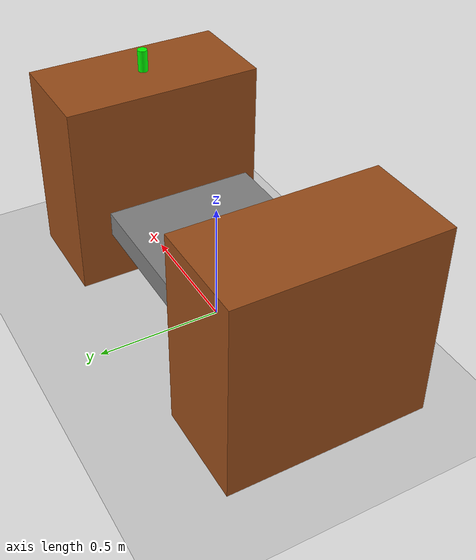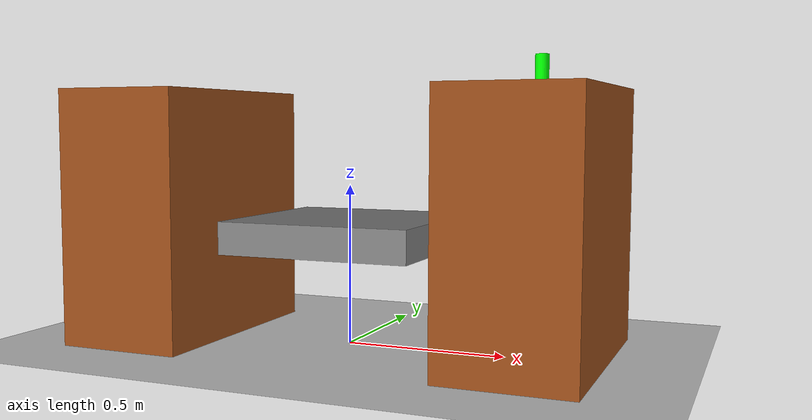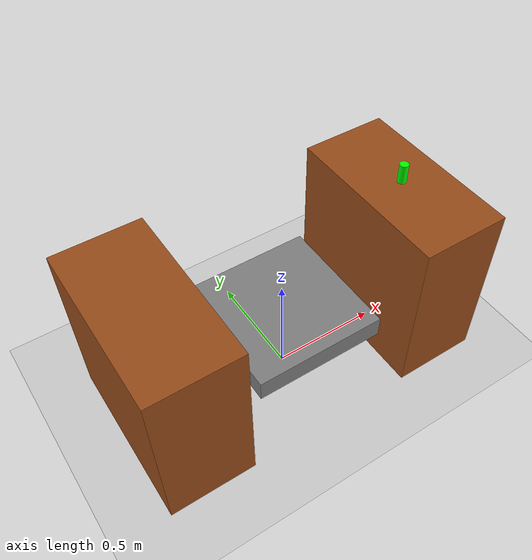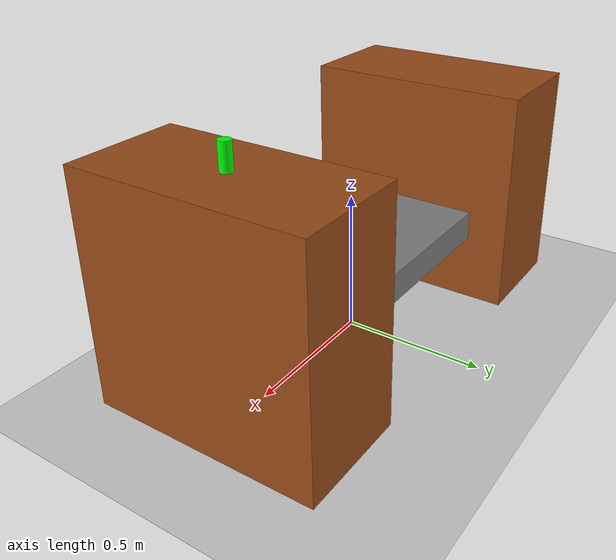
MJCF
<mujoco model="panda_world">

    <compiler angle="degree" coordinate="local"/>

    <option timestep="0.002"/>

    <default>
        <geom type="box" rgba="0.8 0.6 0.4 1" condim="3"/>
    </default>

    <worldbody>
        <!-- Top light -->
        <light name="top" pos="0 0 2" mode="trackcom"/>

        <!-- Ground plane -->
        <geom type="plane" size="5 5 0.1" rgba="0.8 0.8 0.8 1"/>

        <!-- Platform under robot -->
        <body name="platform" pos="0 0 0.35">
            <geom type="box" size="0.3 0.3 0.05" rgba="0.5 0.5 0.5 1"/>
        </body>

        <!-- Left table -->
        <body name="table_left" pos="-0.6 0 0.4">
            <geom type="box" size="0.2 0.4 0.4" rgba="0.6 0.3 0.1 1"/>
        </body>

        <!-- Right table -->
        <body name="table_right" pos="0.6 0 0.4">
            <geom type="box" size="0.2 0.4 0.4" rgba="0.6 0.3 0.1 1"/>
        </body>

        <!-- Test tube on left table -->
        <body name="test_tube" pos="0.6 0 0.81">
            <geom type="cylinder" size="0.02 0.08" rgba="0 1 0 1"/>
        </body>

    </worldbody>

</mujoco>
